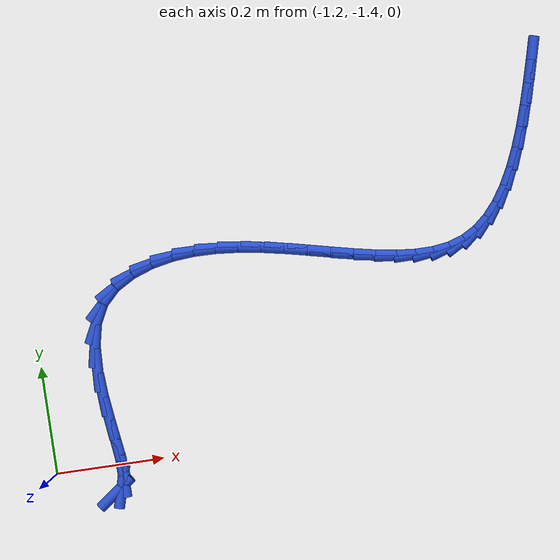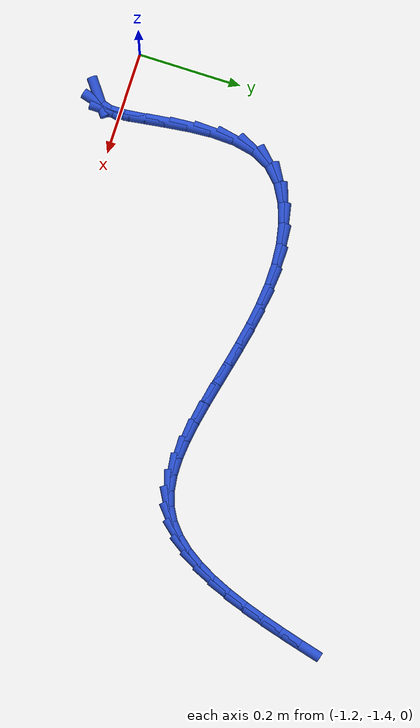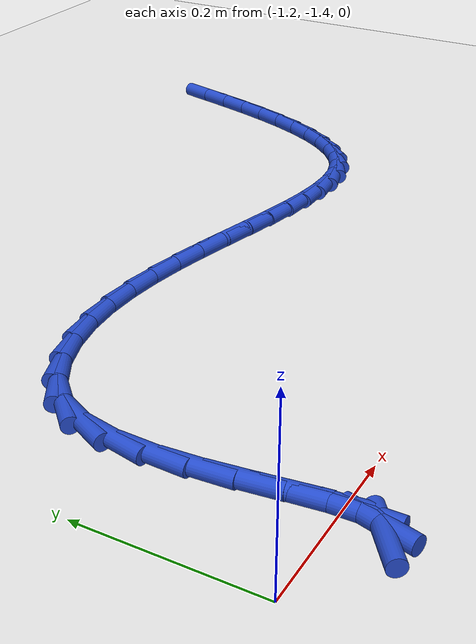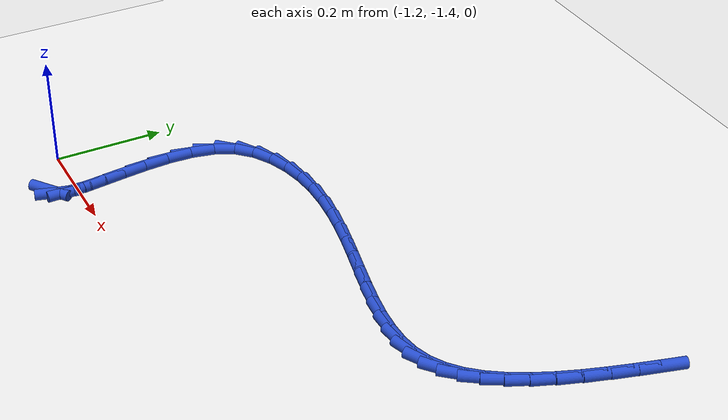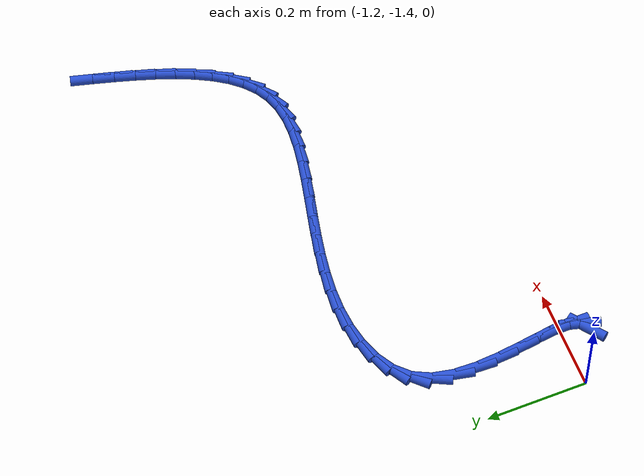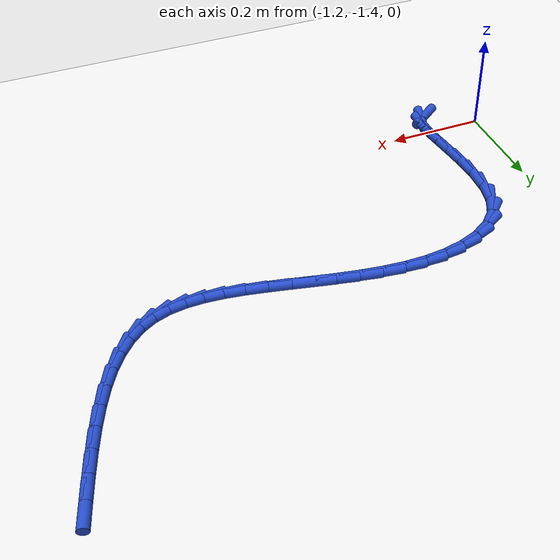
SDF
<sdf version="1.6">
 <world name="default">
  <model name="ground_plane">
   <static>1</static>
   <link name="link">
    <collision name="collision">
     <geometry><plane><normal>0 0 1</normal><size>100 100</size></plane></geometry>
     <surface><friction><ode><mu>100</mu><mu2>50</mu2></ode></friction></surface>
    </collision>
    <visual name="visual">
     <cast_shadows>0</cast_shadows>
     <geometry><plane><normal>0 0 1</normal><size>100 100</size></plane></geometry>
     <material>
      <script><uri>file://media/materials/scripts/gazebo.material</uri><name>Gazebo/WhiteGlow</name></script>
     </material>
    </visual>
   </link>
  </model>
  <model name="line">
   <link name="link_172">
    <pose>-1.0960576965089026 -1.4483878752093124 0.01 0 1.57 0.6361000148649639</pose>
    <collision name="collision">
     <geometry><cylinder><radius>0.01</radius><length>0.08</length></cylinder></geometry>
    </collision>
    <visual name="visual">
     <material>
      <script><name>Gazebo/Blue</name><uri>file://media/materials/scripts/gazebo.material</uri></script>
     </material>
     <geometry><cylinder><radius>0.01</radius><length>0.08</length></cylinder></geometry>
    </visual>
   </link>
   <link name="link_173">
    <pose>-1.0837511075093715 -1.4392994663905032 0.01 0 1.57 1.2963924160550668</pose>
    <collision name="collision">
     <geometry><cylinder><radius>0.01</radius><length>0.08</length></cylinder></geometry>
    </collision>
    <visual name="visual">
     <material>
      <script><name>Gazebo/Blue</name><uri>file://media/materials/scripts/gazebo.material</uri></script>
     </material>
     <geometry><cylinder><radius>0.01</radius><length>0.08</length></cylinder></geometry>
    </visual>
   </link>
   <link name="link_174">
    <pose>-1.0782276147776106 -1.4196781837068586 0.01 0 1.57 -1.5608910733339854</pose>
    <collision name="collision">
     <geometry><cylinder><radius>0.01</radius><length>0.08</length></cylinder></geometry>
    </collision>
    <visual name="visual">
     <material>
      <script><name>Gazebo/Blue</name><uri>file://media/materials/scripts/gazebo.material</uri></script>
     </material>
     <geometry><cylinder><radius>0.01</radius><length>0.08</length></cylinder></geometry>
    </visual>
   </link>
   <link name="link_175">
    <pose>-1.078518443899969 -1.3903180454761805 0.01 0 1.57 -1.4615836143578054</pose>
    <collision name="collision">
     <geometry><cylinder><radius>0.01</radius><length>0.08</length></cylinder></geometry>
    </collision>
    <visual name="visual">
     <material>
      <script><name>Gazebo/Blue</name><uri>file://media/materials/scripts/gazebo.material</uri></script>
     </material>
     <geometry><cylinder><radius>0.01</radius><length>0.08</length></cylinder></geometry>
    </visual>
   </link>
   <link name="link_176">
    <pose>-1.0825615047726243 -1.3534452898896985 0.01 0 1.57 -1.436102911609326</pose>
    <collision name="collision">
     <geometry><cylinder><radius>0.01</radius><length>0.08</length></cylinder></geometry>
    </collision>
    <visual name="visual">
     <material>
      <script><name>Gazebo/Blue</name><uri>file://media/materials/scripts/gazebo.material</uri></script>
     </material>
     <geometry><cylinder><radius>0.01</radius><length>0.08</length></cylinder></geometry>
    </visual>
   </link>
   <link name="link_177">
    <pose>-1.0882703262692321 -1.3113180937500637 0.01 0 1.57 -1.4541363980407733</pose>
    <collision name="collision">
     <geometry><cylinder><radius>0.01</radius><length>0.08</length></cylinder></geometry>
    </collision>
    <visual name="visual">
     <material>
      <script><name>Gazebo/Blue</name><uri>file://media/materials/scripts/gazebo.material</uri></script>
     </material>
     <geometry><cylinder><radius>0.01</radius><length>0.08</length></cylinder></geometry>
    </visual>
   </link>
   <link name="link_178">
    <pose>-1.0935584372634473 -1.2661946338599273 0.01 0 1.57 -1.5102329866658581</pose>
    <collision name="collision">
     <geometry><cylinder><radius>0.01</radius><length>0.08</length></cylinder></geometry>
    </collision>
    <visual name="visual">
     <material>
      <script><name>Gazebo/Blue</name><uri>file://media/materials/scripts/gazebo.material</uri></script>
     </material>
     <geometry><cylinder><radius>0.01</radius><length>0.08</length></cylinder></geometry>
    </visual>
   </link>
   <link name="link_179">
    <pose>-1.0963393666289243 -1.22033308702194 0.01 0 1.57 1.5299380717384958</pose>
    <collision name="collision">
     <geometry><cylinder><radius>0.01</radius><length>0.08</length></cylinder></geometry>
    </collision>
    <visual name="visual">
     <material>
      <script><name>Gazebo/Blue</name><uri>file://media/materials/scripts/gazebo.material</uri></script>
     </material>
     <geometry><cylinder><radius>0.01</radius><length>0.08</length></cylinder></geometry>
    </visual>
   </link>
   <link name="link_180">
    <pose>-1.0945266432393184 -1.1759916300387552 0.01 0 1.57 1.3644044792695884</pose>
    <collision name="collision">
     <geometry><cylinder><radius>0.01</radius><length>0.08</length></cylinder></geometry>
    </collision>
    <visual name="visual">
     <material>
      <script><name>Gazebo/Blue</name><uri>file://media/materials/scripts/gazebo.material</uri></script>
     </material>
     <geometry><cylinder><radius>0.01</radius><length>0.08</length></cylinder></geometry>
    </visual>
   </link>
   <link name="link_181">
    <pose>-1.086033795968285 -1.1354284397130239 0.01 0 1.57 1.1072497858452985</pose>
    <collision name="collision">
     <geometry><cylinder><radius>0.01</radius><length>0.08</length></cylinder></geometry>
    </collision>
    <visual name="visual">
     <material>
      <script><name>Gazebo/Blue</name><uri>file://media/materials/scripts/gazebo.material</uri></script>
     </material>
     <geometry><cylinder><radius>0.01</radius><length>0.08</length></cylinder></geometry>
    </visual>
   </link>
   <link name="link_182">
    <pose>-1.0687746863790468 -1.1009014970483273 0.01 0 1.57 0.7827032357080737</pose>
    <collision name="collision">
     <geometry><cylinder><radius>0.01</radius><length>0.08</length></cylinder></geometry>
    </collision>
    <visual name="visual">
     <material>
      <script><name>Gazebo/Blue</name><uri>file://media/materials/scripts/gazebo.material</uri></script>
     </material>
     <geometry><cylinder><radius>0.01</radius><length>0.08</length></cylinder></geometry>
    </visual>
   </link>
   <link name="link_183">
    <pose>-1.0417544668159981 -1.0740265214905522 0.01 0 1.57 0.5214245027284612</pose>
    <collision name="collision">
     <geometry><cylinder><radius>0.01</radius><length>0.08</length></cylinder></geometry>
    </collision>
    <visual name="visual">
     <material>
      <script><name>Gazebo/Blue</name><uri>file://media/materials/scripts/gazebo.material</uri></script>
     </material>
     <geometry><cylinder><radius>0.01</radius><length>0.08</length></cylinder></geometry>
    </visual>
   </link>
   <link name="link_184">
    <pose>-1.0074980313581685 -1.0543477453547778 0.01 0 1.57 0.33581903790709156</pose>
    <collision name="collision">
     <geometry><cylinder><radius>0.01</radius><length>0.08</length></cylinder></geometry>
    </collision>
    <visual name="visual">
     <material>
      <script><name>Gazebo/Blue</name><uri>file://media/materials/scripts/gazebo.material</uri></script>
     </material>
     <geometry><cylinder><radius>0.01</radius><length>0.08</length></cylinder></geometry>
    </visual>
   </link>
   <link name="link_185">
    <pose>-0.9692357445480783 -1.0409926892900108 0.01 0 1.57 0.1950266456506809</pose>
    <collision name="collision">
     <geometry><cylinder><radius>0.01</radius><length>0.08</length></cylinder></geometry>
    </collision>
    <visual name="visual">
     <material>
      <script><name>Gazebo/Blue</name><uri>file://media/materials/scripts/gazebo.material</uri></script>
     </material>
     <geometry><cylinder><radius>0.01</radius><length>0.08</length></cylinder></geometry>
    </visual>
   </link>
   <link name="link_186">
    <pose>-0.9294038940511694 -1.033124405468184 0.01 0 1.57 0.07657801451213143</pose>
    <collision name="collision">
     <geometry><cylinder><radius>0.01</radius><length>0.08</length></cylinder></geometry>
    </collision>
    <visual name="visual">
     <material>
      <script><name>Gazebo/Blue</name><uri>file://media/materials/scripts/gazebo.material</uri></script>
     </material>
     <geometry><cylinder><radius>0.01</radius><length>0.08</length></cylinder></geometry>
    </visual>
   </link>
   <link name="link_187">
    <pose>-0.888555718742835 -1.029990204390869 0.01 0 1.57 -0.020663712699013802</pose>
    <collision name="collision">
     <geometry><cylinder><radius>0.01</radius><length>0.08</length></cylinder></geometry>
    </collision>
    <visual name="visual">
     <material>
      <script><name>Gazebo/Blue</name><uri>file://media/materials/scripts/gazebo.material</uri></script>
     </material>
     <geometry><cylinder><radius>0.01</radius><length>0.08</length></cylinder></geometry>
    </visual>
   </link>
   <link name="link_188">
    <pose>-0.8469714655583382 -1.0308496117741315 0.01 0 1.57 -0.09751402757725003</pose>
    <collision name="collision">
     <geometry><cylinder><radius>0.01</radius><length>0.08</length></cylinder></geometry>
    </collision>
    <visual name="visual">
     <material>
      <script><name>Gazebo/Blue</name><uri>file://media/materials/scripts/gazebo.material</uri></script>
     </material>
     <geometry><cylinder><radius>0.01</radius><length>0.08</length></cylinder></geometry>
    </visual>
   </link>
   <link name="link_189">
    <pose>-0.8049313814329461 -1.0349621533340385 0.01 0 1.57 -0.15566732525048588</pose>
    <collision name="collision">
     <geometry><cylinder><radius>0.01</radius><length>0.08</length></cylinder></geometry>
    </collision>
    <visual name="visual">
     <material>
      <script><name>Gazebo/Blue</name><uri>file://media/materials/scripts/gazebo.material</uri></script>
     </material>
     <geometry><cylinder><radius>0.01</radius><length>0.08</length></cylinder></geometry>
    </visual>
   </link>
   <link name="link_190">
    <pose>-0.7627157133019218 -1.0415873547866557 0.01 0 1.57 -0.19682890758330546</pose>
    <collision name="collision">
     <geometry><cylinder><radius>0.01</radius><length>0.08</length></cylinder></geometry>
    </collision>
    <visual name="visual">
     <material>
      <script><name>Gazebo/Blue</name><uri>file://media/materials/scripts/gazebo.material</uri></script>
     </material>
     <geometry><cylinder><radius>0.01</radius><length>0.08</length></cylinder></geometry>
    </visual>
   </link>
   <link name="link_191">
    <pose>-0.7206047081005305 -1.0499847418480506 0.01 0 1.57 -0.22224327047896922</pose>
    <collision name="collision">
     <geometry><cylinder><radius>0.01</radius><length>0.08</length></cylinder></geometry>
    </collision>
    <visual name="visual">
     <material>
      <script><name>Gazebo/Blue</name><uri>file://media/materials/scripts/gazebo.material</uri></script>
     </material>
     <geometry><cylinder><radius>0.01</radius><length>0.08</length></cylinder></geometry>
    </visual>
   </link>
   <link name="link_192">
    <pose>-0.6788786127640349 -1.0594138402342892 0.01 0 1.57 -0.23245031434098093</pose>
    <collision name="collision">
     <geometry><cylinder><radius>0.01</radius><length>0.08</length></cylinder></geometry>
    </collision>
    <visual name="visual">
     <material>
      <script><name>Gazebo/Blue</name><uri>file://media/materials/scripts/gazebo.material</uri></script>
     </material>
     <geometry><cylinder><radius>0.01</radius><length>0.08</length></cylinder></geometry>
    </visual>
   </link>
   <link name="link_193">
    <pose>-0.6378176742277029 -1.0691341756614383 0.01 0 1.57 -0.22712229071399767</pose>
    <collision name="collision">
     <geometry><cylinder><radius>0.01</radius><length>0.08</length></cylinder></geometry>
    </collision>
    <visual name="visual">
     <material>
      <script><name>Gazebo/Blue</name><uri>file://media/materials/scripts/gazebo.material</uri></script>
     </material>
     <geometry><cylinder><radius>0.01</radius><length>0.08</length></cylinder></geometry>
    </visual>
   </link>
   <link name="link_194">
    <pose>-0.5977021394267968 -1.0784052738455638 0.01 0 1.57 -0.20488588097379193</pose>
    <collision name="collision">
     <geometry><cylinder><radius>0.01</radius><length>0.08</length></cylinder></geometry>
    </collision>
    <visual name="visual">
     <material>
      <script><name>Gazebo/Blue</name><uri>file://media/materials/scripts/gazebo.material</uri></script>
     </material>
     <geometry><cylinder><radius>0.01</radius><length>0.08</length></cylinder></geometry>
    </visual>
   </link>
   <link name="link_195">
    <pose>-0.5588122552965821 -1.0864866605027332 0.01 0 1.57 -0.16307981139699554</pose>
    <collision name="collision">
     <geometry><cylinder><radius>0.01</radius><length>0.08</length></cylinder></geometry>
    </collision>
    <visual name="visual">
     <material>
      <script><name>Gazebo/Blue</name><uri>file://media/materials/scripts/gazebo.material</uri></script>
     </material>
     <geometry><cylinder><radius>0.01</radius><length>0.08</length></cylinder></geometry>
    </visual>
   </link>
   <link name="link_196">
    <pose>-0.5214282687723228 -1.0926378613490129 0.01 0 1.57 -0.09746413606045884</pose>
    <collision name="collision">
     <geometry><cylinder><radius>0.01</radius><length>0.08</length></cylinder></geometry>
    </collision>
    <visual name="visual">
     <material>
      <script><name>Gazebo/Blue</name><uri>file://media/materials/scripts/gazebo.material</uri></script>
     </material>
     <geometry><cylinder><radius>0.01</radius><length>0.08</length></cylinder></geometry>
    </visual>
   </link>
   <link name="link_197">
    <pose>-0.4858304267892831 -1.0961184021004686 0.01 0 1.57 -0.0020698858095502333</pose>
    <collision name="collision">
     <geometry><cylinder><radius>0.01</radius><length>0.08</length></cylinder></geometry>
    </collision>
    <visual name="visual">
     <material>
      <script><name>Gazebo/Blue</name><uri>file://media/materials/scripts/gazebo.material</uri></script>
     </material>
     <geometry><cylinder><radius>0.01</radius><length>0.08</length></cylinder></geometry>
    </visual>
   </link>
   <link name="link_198">
    <pose>-0.4522989762827292 -1.096187808473168 0.01 0 1.57 0.1301634249048671</pose>
    <collision name="collision">
     <geometry><cylinder><radius>0.01</radius><length>0.08</length></cylinder></geometry>
    </collision>
    <visual name="visual">
     <material>
      <script><name>Gazebo/Blue</name><uri>file://media/materials/scripts/gazebo.material</uri></script>
     </material>
     <geometry><cylinder><radius>0.01</radius><length>0.08</length></cylinder></geometry>
    </visual>
   </link>
   <link name="link_199">
    <pose>-0.4211141641879245 -1.0921056061831769 0.01 0 1.57 0.3044719757723344</pose>
    <collision name="collision">
     <geometry><cylinder><radius>0.01</radius><length>0.08</length></cylinder></geometry>
    </collision>
    <visual name="visual">
     <material>
      <script><name>Gazebo/Blue</name><uri>file://media/materials/scripts/gazebo.material</uri></script>
     </material>
     <geometry><cylinder><radius>0.01</radius><length>0.08</length></cylinder></geometry>
    </visual>
   </link>
   <link name="link_200">
    <pose>-0.39255617568926954 -1.0831314592235586 0.01 0 1.57 0.5079936655538184</pose>
    <collision name="collision">
     <geometry><cylinder><radius>0.01</radius><length>0.08</length></cylinder></geometry>
    </collision>
    <visual name="visual">
     <material>
      <script><name>Gazebo/Blue</name><uri>file://media/materials/scripts/gazebo.material</uri></script>
     </material>
     <geometry><cylinder><radius>0.01</radius><length>0.08</length></cylinder></geometry>
    </visual>
   </link>
   <link name="link_201">
    <pose>-0.3667886653245548 -1.06878597542729 0.01 0 1.57 0.6968478425020372</pose>
    <collision name="collision">
     <geometry><cylinder><radius>0.01</radius><length>0.08</length></cylinder></geometry>
    </collision>
    <visual name="visual">
     <material>
      <script><name>Gazebo/Blue</name><uri>file://media/materials/scripts/gazebo.material</uri></script>
     </material>
     <geometry><cylinder><radius>0.01</radius><length>0.08</length></cylinder></geometry>
    </visual>
   </link>
   <link name="link_202">
    <pose>-0.34361660533787003 -1.0493929499240249 0.01 0 1.57 0.8549752259293393</pose>
    <collision name="collision">
     <geometry><cylinder><radius>0.01</radius><length>0.08</length></cylinder></geometry>
    </collision>
    <visual name="visual">
     <material>
      <script><name>Gazebo/Blue</name><uri>file://media/materials/scripts/gazebo.material</uri></script>
     </material>
     <geometry><cylinder><radius>0.01</radius><length>0.08</length></cylinder></geometry>
    </visual>
   </link>
   <link name="link_203">
    <pose>-0.32277618020709653 -1.0254302123774663 0.01 0 1.57 0.9810799862834199</pose>
    <collision name="collision">
     <geometry><cylinder><radius>0.01</radius><length>0.08</length></cylinder></geometry>
    </collision>
    <visual name="visual">
     <material>
      <script><name>Gazebo/Blue</name><uri>file://media/materials/scripts/gazebo.material</uri></script>
     </material>
     <geometry><cylinder><radius>0.01</radius><length>0.08</length></cylinder></geometry>
    </visual>
   </link>
   <link name="link_204">
    <pose>-0.30400357441011644 -0.9973755924513182 0.01 0 1.57 1.0789076188810236</pose>
    <collision name="collision">
     <geometry><cylinder><radius>0.01</radius><length>0.08</length></cylinder></geometry>
    </collision>
    <visual name="visual">
     <material>
      <script><name>Gazebo/Blue</name><uri>file://media/materials/scripts/gazebo.material</uri></script>
     </material>
     <geometry><cylinder><radius>0.01</radius><length>0.08</length></cylinder></geometry>
    </visual>
   </link>
   <link name="link_205">
    <pose>-0.2870349724248117 -0.9657069198092844 0.01 0 1.57 1.1535423983712332</pose>
    <collision name="collision">
     <geometry><cylinder><radius>0.01</radius><length>0.08</length></cylinder></geometry>
    </collision>
    <visual name="visual">
     <material>
      <script><name>Gazebo/Blue</name><uri>file://media/materials/scripts/gazebo.material</uri></script>
     </material>
     <geometry><cylinder><radius>0.01</radius><length>0.08</length></cylinder></geometry>
    </visual>
   </link>
   <link name="link_206">
    <pose>-0.27160655872906403 -0.9309020241150677 0.01 0 1.57 1.2096102582060637</pose>
    <collision name="collision">
     <geometry><cylinder><radius>0.01</radius><length>0.08</length></cylinder></geometry>
    </collision>
    <visual name="visual">
     <material>
      <script><name>Gazebo/Blue</name><uri>file://media/materials/scripts/gazebo.material</uri></script>
     </material>
     <geometry><cylinder><radius>0.01</radius><length>0.08</length></cylinder></geometry>
    </visual>
   </link>
   <link name="link_207">
    <pose>-0.2574545178007564 -0.8934387350323743 0.01 0 1.57 1.2507524412945699</pose>
    <collision name="collision">
     <geometry><cylinder><radius>0.01</radius><length>0.08</length></cylinder></geometry>
    </collision>
    <visual name="visual">
     <material>
      <script><name>Gazebo/Blue</name><uri>file://media/materials/scripts/gazebo.material</uri></script>
     </material>
     <geometry><cylinder><radius>0.01</radius><length>0.08</length></cylinder></geometry>
    </visual>
   </link>
   <link name="link_208">
    <pose>-0.2443150341177703 -0.8537948822249067 0.01 0 1.57 1.2796332070098315</pose>
    <collision name="collision">
     <geometry><cylinder><radius>0.01</radius><length>0.08</length></cylinder></geometry>
    </collision>
    <visual name="visual">
     <material>
      <script><name>Gazebo/Blue</name><uri>file://media/materials/scripts/gazebo.material</uri></script>
     </material>
     <geometry><cylinder><radius>0.01</radius><length>0.08</length></cylinder></geometry>
    </visual>
   </link>
   <link name="link_209">
    <pose>-0.23192429215798802 -0.8124482953563689 0.01 0 1.57 1.2980969965058824</pose>
    <collision name="collision">
     <geometry><cylinder><radius>0.01</radius><length>0.08</length></cylinder></geometry>
    </collision>
    <visual name="visual">
     <material>
      <script><name>Gazebo/Blue</name><uri>file://media/materials/scripts/gazebo.material</uri></script>
     </material>
     <geometry><cylinder><radius>0.01</radius><length>0.08</length></cylinder></geometry>
    </visual>
   </link>
   <link name="link_210">
    <pose>-0.2200184763992911 -0.7698768040904636 0.01 0 1.57 1.3073278085324658</pose>
    <collision name="collision">
     <geometry><cylinder><radius>0.01</radius><length>0.08</length></cylinder></geometry>
    </collision>
    <visual name="visual">
     <material>
      <script><name>Gazebo/Blue</name><uri>file://media/materials/scripts/gazebo.material</uri></script>
     </material>
     <geometry><cylinder><radius>0.01</radius><length>0.08</length></cylinder></geometry>
    </visual>
   </link>
  </model>
 </world>
</sdf>
